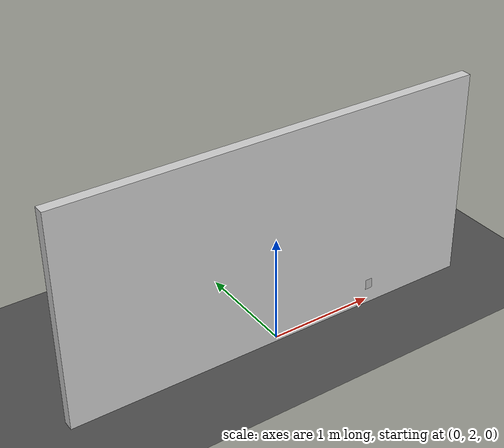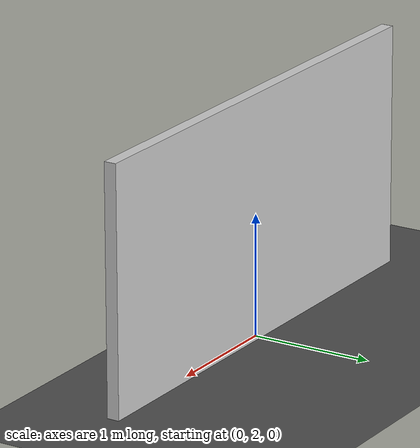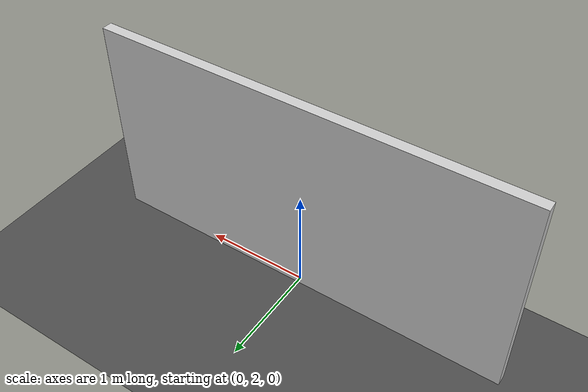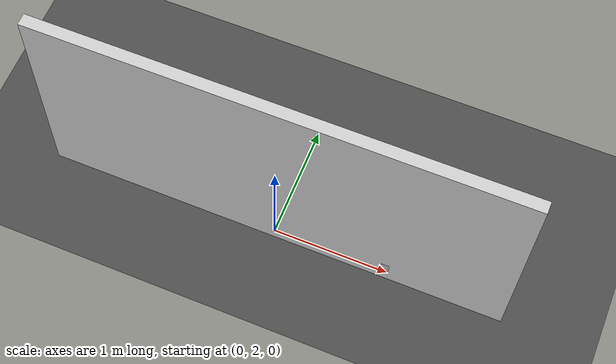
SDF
<?xml version="1.0"?>
<sdf version="1.9">
  <world name="apriltag_world">
<physics name="1ms" type="ignored">
      <max_step_size>0.01</max_step_size>
      <real_time_factor>1.0</real_time_factor>
    </physics>
<plugin filename="gz-sim-physics-system" name="gz::sim::systems::Physics"/>
    <plugin filename="gz-sim-user-commands-system" name="gz::sim::systems::UserCommands"/>
    <plugin filename="gz-sim-scene-broadcaster-system" name="gz::sim::systems::SceneBroadcaster"/>
	<plugin
		filename="gz-sim-sensors-system"
		name="gz::sim::systems::Sensors">
	  <!-- Обычно указывают движок рендеринга -->
	  <render_engine>ogre2</render_engine>
	</plugin>
    <light type="directional" name="sun">
      <pose>0 0 10 0 0 0</pose>
      <diffuse>0.8 0.8 0.8 1</diffuse>
    </light>

    <!-- Пол -->
    <model name="ground_plane">
      <static>true</static>
      <link name="link">
        <collision name="collision">
          <geometry><plane><normal>0 0 1</normal><size>10 10</size></plane></geometry>
        </collision>
        <visual name="visual">
          <geometry><plane><normal>0 0 1</normal><size>10 10</size></plane></geometry>
          <material><ambient>0.3 0.3 0.3 1</ambient></material>
        </visual>
      </link>
    </model>

    <!-- Стена -->
    <model name="wall">
      <static>true</static>
      <pose>0 2 1 0 0 0</pose>
      <link name="link">
        <collision name="collision">
          <geometry>
            <box>
              <size>4 0.1 2</size>
            </box>
          </geometry>
        </collision>
        <visual name="visual">
          <geometry>
            <box>
              <size>4 0.1 2</size>
            </box>
          </geometry>
          <material>
            <ambient>0.8 0.8 0.8 1</ambient>
            <diffuse>0.8 0.8 0.8 1</diffuse>
          </material>
        </visual>
      </link>
    </model>

    <!-- AprilTag на стене -->
    <include>
      <uri>model://Apriltag36_11_00000</uri>
      <pose>1 1.95  0.2  4.71 1.57 0</pose>
      <name>apriltag_0</name>
    </include>
  </world>
</sdf>

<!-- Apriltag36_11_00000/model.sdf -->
<sdf version='1.6'>
  <model name='Apriltag36_11_00000'>
    <link name="link">
      <inertial>
        <pose>0 0 0 0 0 0</pose>
        <mass>0.5</mass>
        <inertia>
          <ixx>0.0001</ixx>
          <ixy>0</ixy>
          <ixz>0</ixz>
          <iyy>0.0001</iyy>
          <iyz>0</iyz>
          <izz>0.0001</izz>
        </inertia>
      </inertial>
      <collision name="collision">
        <pose>0 0 0 0 0 0</pose>
        <geometry>
          <mesh>
            <uri>model://Apriltag36_11_00000/meshes/tag36_11_00000.dae</uri>
          </mesh>
        </geometry>
        <surface>
          <friction>
            <ode>
              <mu>1.0</mu>
              <mu2>1.0</mu2>
            </ode>
          </friction>
          <contact>
            <ode>
              <kp>10000000.0</kp>
              <kd>1.0</kd>
              <min_depth>0.001</min_depth>
              <max_vel>0.1</max_vel>
            </ode>
          </contact>
        </surface>
      </collision>
      <visual name="visual">
        <pose>0 0 0 0 0 0</pose>
        <geometry>
          <mesh>
            <uri>model://Apriltag36_11_00000/meshes/tag36_11_00000.dae</uri>
          </mesh>
        </geometry>
      </visual>
    </link>
  </model>
</sdf>
